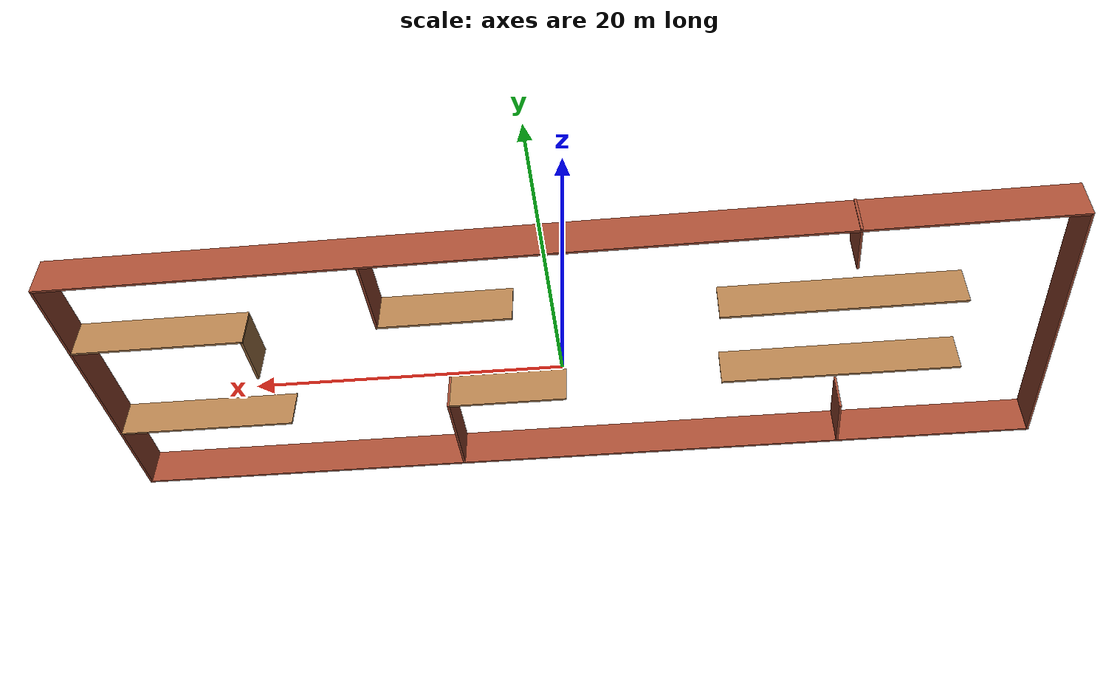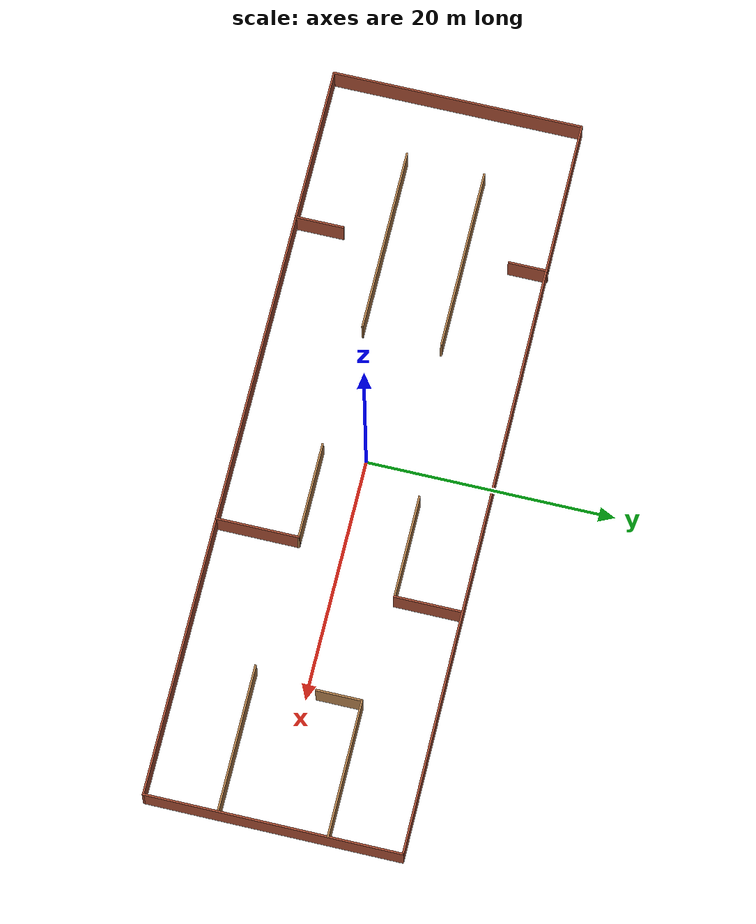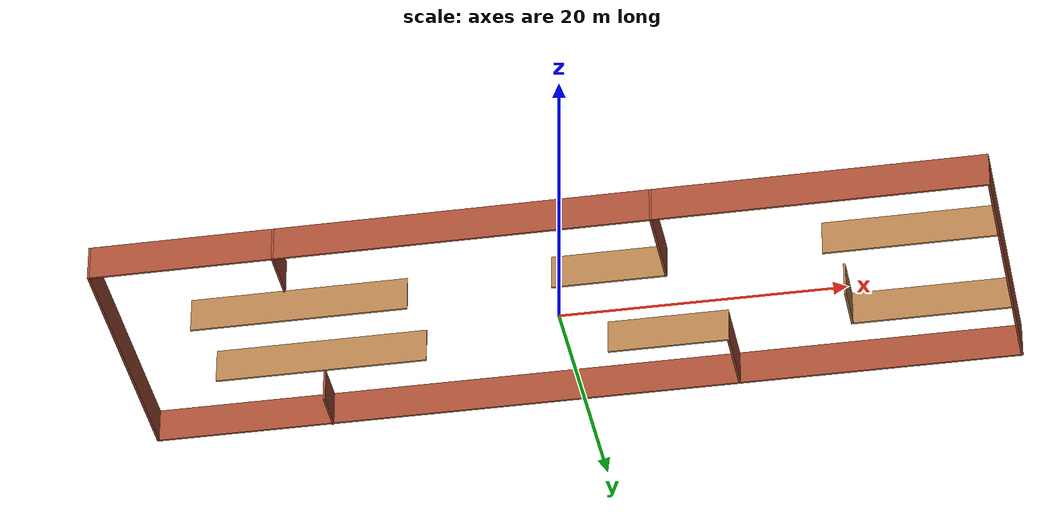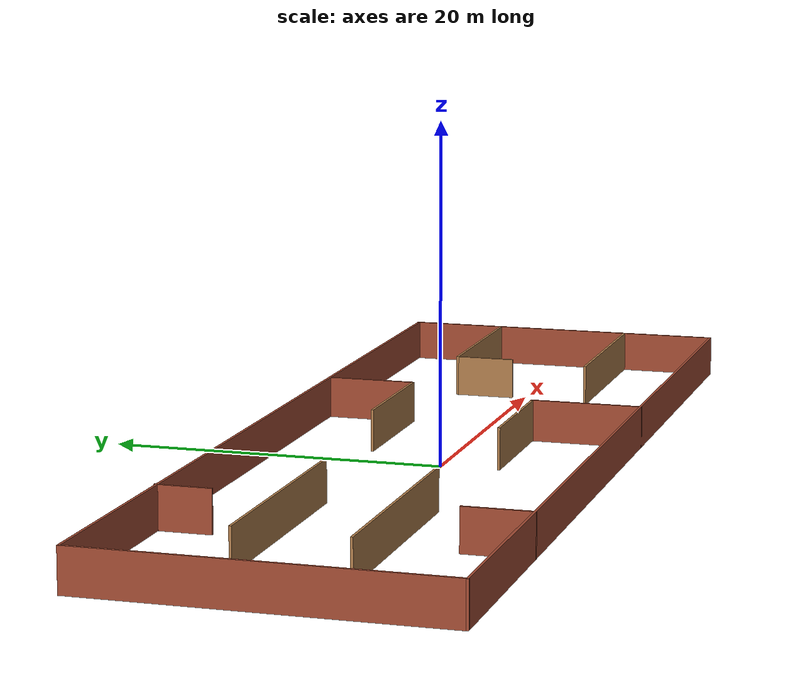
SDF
<?xml version='1.0'?>
<sdf version='1.7'>
  <model name='big_model'>
    <pose>0.037057 0.173986 0 0 -0 0</pose>
    <link name='Wall_10'>
      <collision name='Wall_10_Collision'>
        <geometry>
          <box>
            <size>15 0.15 2.5</size>
          </box>
        </geometry>
        <pose>0 0 1.25 0 -0 0</pose>
      </collision>
      <visual name='Wall_10_Visual'>
        <pose>0 0 1.25 0 -0 0</pose>
        <geometry>
          <box>
            <size>15 0.15 2.5</size>
          </box>
        </geometry>
        <material>
          <script>
            <uri>file://media/materials/scripts/gazebo.material</uri>
            <name>Gazebo/Wood</name>
          </script>
          <ambient>0.435294 0.796078 0.67451 1</ambient>
        </material>
        <meta>
          <layer>0</layer>
        </meta>
      </visual>
      <pose>-17.5632 3.49941 0 0 -0 0</pose>
    </link>
    <link name='Wall_12'>
      <collision name='Wall_12_Collision'>
        <geometry>
          <box>
            <size>11.25 0.15 2.5</size>
          </box>
        </geometry>
        <pose>0 0 1.25 0 -0 0</pose>
      </collision>
      <visual name='Wall_12_Visual'>
        <pose>0 0 1.25 0 -0 0</pose>
        <geometry>
          <box>
            <size>11.25 0.15 2.5</size>
          </box>
        </geometry>
        <material>
          <script>
            <uri>file://media/materials/scripts/gazebo.material</uri>
            <name>Gazebo/Wood</name>
          </script>
          <ambient>0.435294 0.796078 0.67451 1</ambient>
        </material>
        <meta>
          <layer>0</layer>
        </meta>
      </visual>
      <pose>25.25 4.26806 0 0 -0 3.14159</pose>
    </link>
    <link name='Wall_13'>
      <collision name='Wall_13_Collision'>
        <geometry>
          <box>
            <size>3.75 0.15 2.5</size>
          </box>
        </geometry>
        <pose>0 0 1.25 0 -0 0</pose>
      </collision>
      <visual name='Wall_13_Visual'>
        <pose>0 0 1.25 0 -0 0</pose>
        <geometry>
          <box>
            <size>3.75 0.15 2.5</size>
          </box>
        </geometry>
        <material>
          <script>
            <uri>file://media/materials/scripts/gazebo.material</uri>
            <name>Gazebo/Wood</name>
          </script>
          <ambient>0.435294 0.796078 0.67451 1</ambient>
        </material>
        <meta>
          <layer>0</layer>
        </meta>
      </visual>
      <pose>19.7 2.46806 0 0 -0 -1.5708</pose>
    </link>
    <link name='Wall_15'>
      <collision name='Wall_15_Collision'>
        <geometry>
          <box>
            <size>6.75 0.15 2.5</size>
          </box>
        </geometry>
        <pose>0 0 1.25 0 -0 0</pose>
      </collision>
      <visual name='Wall_15_Visual'>
        <pose>0 0 1.25 0 -0 0</pose>
        <geometry>
          <box>
            <size>6.75 0.15 2.5</size>
          </box>
        </geometry>
        <material>
          <script>
            <uri>file://media/materials/scripts/gazebo.material</uri>
            <name>Gazebo/Bricks</name>
          </script>
          <ambient>1 1 1 1</ambient>
        </material>
        <meta>
          <layer>0</layer>
        </meta>
      </visual>
      <pose>7.98305 -6.91503 0 0 -0 1.5708</pose>
    </link>
    <link name='Wall_16'>
      <collision name='Wall_16_Collision'>
        <geometry>
          <box>
            <size>8 0.15 2.5</size>
          </box>
        </geometry>
        <pose>0 0 1.25 0 -0 0</pose>
      </collision>
      <visual name='Wall_16_Visual'>
        <pose>0 0 1.25 0 -0 0</pose>
        <geometry>
          <box>
            <size>8 0.15 2.5</size>
          </box>
        </geometry>
        <material>
          <script>
            <uri>file://media/materials/scripts/gazebo.material</uri>
            <name>Gazebo/Wood</name>
          </script>
          <ambient>0.435294 0.796078 0.67451 1</ambient>
        </material>
        <meta>
          <layer>0</layer>
        </meta>
      </visual>
      <pose>4.05805 -3.61503 0 0 -0 3.14159</pose>
    </link>
    <link name='Wall_18'>
      <collision name='Wall_18_Collision'>
        <geometry>
          <box>
            <size>3.25 0.15 2.5</size>
          </box>
        </geometry>
        <pose>0 0 1.25 0 -0 0</pose>
      </collision>
      <visual name='Wall_18_Visual'>
        <pose>0 0 1.25 0 -0 0</pose>
        <geometry>
          <box>
            <size>3.25 0.15 2.5</size>
          </box>
        </geometry>
        <material>
          <script>
            <uri>file://media/materials/scripts/gazebo.material</uri>
            <name>Gazebo/Bricks</name>
          </script>
          <ambient>1 1 1 1</ambient>
        </material>
        <meta>
          <layer>0</layer>
        </meta>
      </visual>
      <pose>-18.1108 8.66503 0 0 -0 -1.5708</pose>
    </link>
    <link name='Wall_21'>
      <collision name='Wall_21_Collision'>
        <geometry>
          <box>
            <size>4 0.15 2.5</size>
          </box>
        </geometry>
        <pose>0 0 1.25 0 -0 0</pose>
      </collision>
      <visual name='Wall_21_Visual'>
        <pose>0 0 1.25 0 -0 0</pose>
        <geometry>
          <box>
            <size>4 0.15 2.5</size>
          </box>
        </geometry>
        <material>
          <script>
            <uri>file://media/materials/scripts/gazebo.material</uri>
            <name>Gazebo/Bricks</name>
          </script>
          <ambient>1 1 1 1</ambient>
        </material>
        <meta>
          <layer>0</layer>
        </meta>
      </visual>
      <pose>-17.9894 -8.29003 0 0 -0 1.5708</pose>
    </link>
    <link name='Wall_23'>
      <collision name='Wall_23_Collision'>
        <geometry>
          <box>
            <size>5.5 0.15 2.5</size>
          </box>
        </geometry>
        <pose>0 0 1.25 0 -0 0</pose>
      </collision>
      <visual name='Wall_23_Visual'>
        <pose>0 0 1.25 0 -0 0</pose>
        <geometry>
          <box>
            <size>5.5 0.15 2.5</size>
          </box>
        </geometry>
        <material>
          <script>
            <uri>file://media/materials/scripts/gazebo.material</uri>
            <name>Gazebo/Bricks</name>
          </script>
          <ambient>1 1 1 1</ambient>
        </material>
        <meta>
          <layer>0</layer>
        </meta>
      </visual>
      <pose>10.9768 7.41867 0 0 -0 -1.5708</pose>
    </link>
    <link name='Wall_24'>
      <collision name='Wall_24_Collision'>
        <geometry>
          <box>
            <size>8.5 0.15 2.5</size>
          </box>
        </geometry>
        <pose>0 0 1.25 0 -0 0</pose>
      </collision>
      <visual name='Wall_24_Visual'>
        <pose>0 0 1.25 0 -0 0</pose>
        <geometry>
          <box>
            <size>8.5 0.15 2.5</size>
          </box>
        </geometry>
        <material>
          <script>
            <uri>file://media/materials/scripts/gazebo.material</uri>
            <name>Gazebo/Wood</name>
          </script>
          <ambient>0.435294 0.796078 0.67451 1</ambient>
        </material>
        <meta>
          <layer>0</layer>
        </meta>
      </visual>
      <pose>6.80177 4.74367 0 0 -0 3.14159</pose>
    </link>
    <link name='Wall_26'>
      <collision name='Wall_26_Collision'>
        <geometry>
          <box>
            <size>12 0.15 2.5</size>
          </box>
        </geometry>
        <pose>0 0 1.25 0 -0 0</pose>
      </collision>
      <visual name='Wall_26_Visual'>
        <pose>0 0 1.25 0 -0 0</pose>
        <geometry>
          <box>
            <size>12 0.15 2.5</size>
          </box>
        </geometry>
        <material>
          <script>
            <uri>file://media/materials/scripts/gazebo.material</uri>
            <name>Gazebo/Wood</name>
          </script>
          <ambient>0.435294 0.796078 0.67451 1</ambient>
        </material>
        <meta>
          <layer>0</layer>
        </meta>
      </visual>
      <pose>24.8201 -4.3522 0 0 -0 3.14159</pose>
    </link>
    <link name='Wall_3'>
      <collision name='Wall_3_Collision'>
        <geometry>
          <box>
            <size>61.75 0.15 2.5</size>
          </box>
        </geometry>
        <pose>0 0 1.25 0 -0 0</pose>
      </collision>
      <visual name='Wall_3_Visual'>
        <pose>0 0 1.25 0 -0 0</pose>
        <geometry>
          <box>
            <size>61.75 0.15 2.5</size>
          </box>
        </geometry>
        <material>
          <script>
            <uri>file://media/materials/scripts/gazebo.material</uri>
            <name>Gazebo/Bricks</name>
          </script>
          <ambient>1 1 1 1</ambient>
        </material>
        <meta>
          <layer>0</layer>
        </meta>
      </visual>
      <pose>-0 -10.215 0 0 -0 3.14159</pose>
    </link>
    <link name='Wall_4'>
      <collision name='Wall_4_Collision'>
        <geometry>
          <box>
            <size>20.5 0.15 2.5</size>
          </box>
        </geometry>
        <pose>0 0 1.25 0 -0 0</pose>
      </collision>
      <visual name='Wall_4_Visual'>
        <pose>0 0 1.25 0 -0 0</pose>
        <geometry>
          <box>
            <size>20.5 0.15 2.5</size>
          </box>
        </geometry>
        <material>
          <script>
            <uri>file://media/materials/scripts/gazebo.material</uri>
            <name>Gazebo/Bricks</name>
          </script>
          <ambient>1 1 1 1</ambient>
        </material>
        <meta>
          <layer>0</layer>
        </meta>
      </visual>
      <pose>-30.8 -0.040032 0 0 -0 1.5708</pose>
    </link>
    <link name='Wall_5'>
      <collision name='Wall_5_Collision'>
        <geometry>
          <box>
            <size>61.75 0.15 2.5</size>
          </box>
        </geometry>
        <pose>0 0 1.25 0 -0 0</pose>
      </collision>
      <visual name='Wall_5_Visual'>
        <pose>0 0 1.25 0 -0 0</pose>
        <geometry>
          <box>
            <size>61.75 0.15 2.5</size>
          </box>
        </geometry>
        <material>
          <script>
            <uri>file://media/materials/scripts/gazebo.material</uri>
            <name>Gazebo/Bricks</name>
          </script>
          <ambient>1 1 1 1</ambient>
        </material>
        <meta>
          <layer>0</layer>
        </meta>
      </visual>
      <pose>-0 10.135 0 0 -0 0</pose>
    </link>
    <link name='Wall_6'>
      <collision name='Wall_6_Collision'>
        <geometry>
          <box>
            <size>20.5 0.15 2.5</size>
          </box>
        </geometry>
        <pose>0 0 1.25 0 -0 0</pose>
      </collision>
      <visual name='Wall_6_Visual'>
        <pose>0 0 1.25 0 -0 0</pose>
        <geometry>
          <box>
            <size>20.5 0.15 2.5</size>
          </box>
        </geometry>
        <material>
          <script>
            <uri>file://media/materials/scripts/gazebo.material</uri>
            <name>Gazebo/Bricks</name>
          </script>
          <ambient>1 1 1 1</ambient>
        </material>
        <meta>
          <layer>0</layer>
        </meta>
      </visual>
      <pose>30.8 -0.040032 0 0 -0 -1.5708</pose>
    </link>
    <link name='Wall_8'>
      <collision name='Wall_8_Collision'>
        <geometry>
          <box>
            <size>15.25 0.15 2.5</size>
          </box>
        </geometry>
        <pose>0 0 1.25 0 -0 0</pose>
      </collision>
      <visual name='Wall_8_Visual'>
        <pose>0 0 1.25 0 -0 0</pose>
        <geometry>
          <box>
            <size>15.25 0.15 2.5</size>
          </box>
        </geometry>
        <material>
          <script>
            <uri>file://media/materials/scripts/gazebo.material</uri>
            <name>Gazebo/Wood</name>
          </script>
          <ambient>0.435294 0.796078 0.67451 1</ambient>
        </material>
        <meta>
          <layer>0</layer>
        </meta>
      </visual>
      <pose>-17.7619 -2.89257 0 0 -0 0</pose>
    </link>
    <static>1</static>
  </model>
</sdf>
